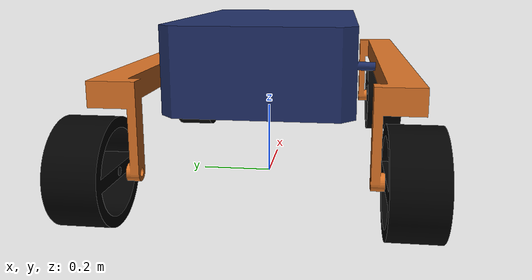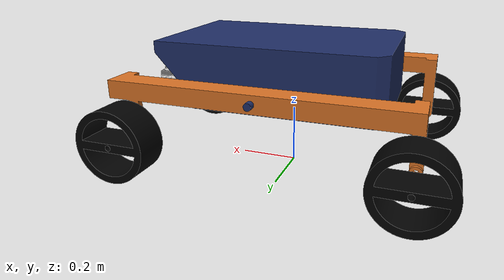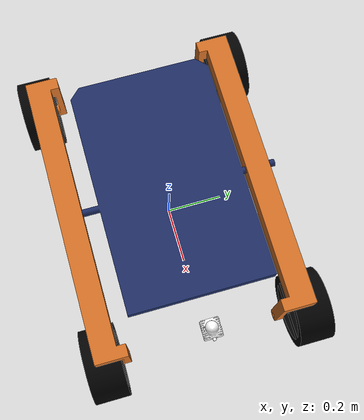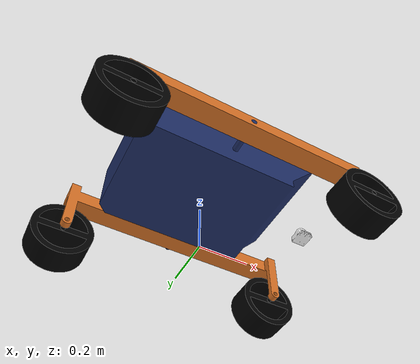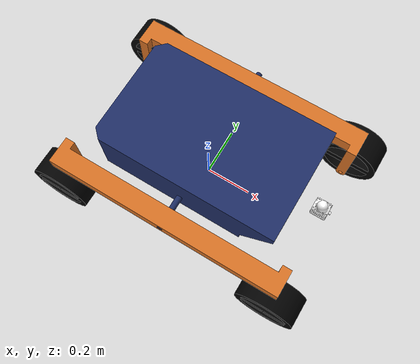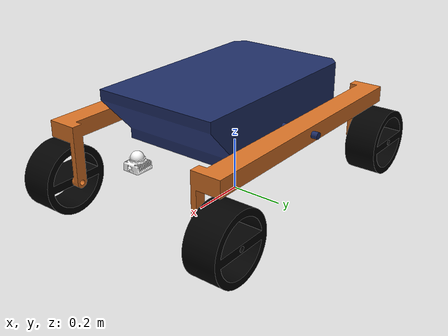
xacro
<?xml version="1.0"?>
<robot name="Deimos" xmlns:xacro="http://www.ros.org/wiki/xacro">

  <xacro:property name="PI" value="3.141592653589793" />

  <xacro:include filename="$(find rover_description)/urdf/rover.material.xacro" />
  <xacro:include filename="$(find rover_description)/urdf/rover.gazebo.xacro" />
  <xacro:include filename="$(find rover_description)/urdf/sensors/lidar3d.xacro" />
  <xacro:include filename="$(find rover_description)/urdf/rover.control.xacro" />

  <link name="base_footprint" />
  <joint name="base_footprint_joint" type="fixed">
    <parent link="base_footprint" />
    <child link="base_link" />
    <origin xyz="0 0 0.2" rpy="0 0 0" />
  </joint>

  <joint name="livox_joint" type="fixed">
    <parent link="base_link" />
    <child link="livox_frame" />
    <!-- Change transform to the actual position -->
    <origin xyz="0.5 0 0.1" rpy="0 0 0" />
  </joint>

  <link name="livox_frame">
    <visual>
      <origin xyz="0 0 0" rpy="${PI/2} 0 0" />
      <geometry>
        <mesh filename="package://rover_description/meshes/livox-mid-360.stl" scale="0.001 0.001 0.001" />
      </geometry>
      <material name="white" />
    </visual>
  </link>

  <link name="base_link">
    <inertial>
      <origin xyz="0.000140 -0.011273 0.154038" rpy="0 0 0" />
      <mass value="40.0" />
      <inertia
        ixx="0.897081" iyy="1.842092" izz="2.420768"
        ixy="0.000000" iyz="-0.000000" ixz="-0.060668" />
    </inertial>
    <visual>
      <origin xyz="0 0 0" rpy="0 0 0" />
      <geometry>
        <mesh filename="package://rover_description/meshes/base_link.stl" scale="0.001 0.001 0.001" />
      </geometry>
      <material name="nice_navy" />
    </visual>
    <collision>
      <origin xyz="0 0 0" rpy="0 0 0" />
      <geometry>
        <mesh filename="package://rover_description/meshes/base_link.stl" scale="0.001 0.001 0.001" />
      </geometry>
    </collision>
  </link>

  <!-- Suspension link macro -->
  <xacro:macro name="suspension_link" params="name side">
    <link name="${name}">
      <inertial>
        <origin xyz="0 ${side * 0.044665} -0.006059" rpy="0 0 0" />
        <mass value="40.25594624417332" />
        <inertia
          ixx="0.072836" iyy="3.825904" izz="3.812794"
          ixy="0.0" iyz="${side * 0.013096}" ixz="0.0" />
      </inertial>

      <visual>
        <origin xyz="-0.023205 ${side * 0.386373} -0.118244" rpy="0 0 0" />
        <geometry>
          <mesh
            filename="package://rover_description/meshes/${name}.stl"
            scale="0.001 0.001 0.001" />
        </geometry>
        <material name="soft_orange" />
      </visual>

      <collision>
        <origin xyz="-0.023205 ${side * 0.386373} -0.118244" rpy="0 0 0" />
        <geometry>
          <mesh
            filename="package://rover_description/meshes/${name}.stl"
            scale="0.001 0.001 0.001" />
        </geometry>
      </collision>
    </link>
  </xacro:macro>

  <xacro:suspension_link name="suspension_left" side="-1" />
  <xacro:suspension_link name="suspension_right" side="1" />

  <!-- Wheel link macro -->
  <xacro:macro name="wheel_link" params="name front_back_sign side_sign">
    <link name="${name}">
      <inertial>
        <origin xyz="0 ${side_sign * -0.06} 0" rpy="0 0 0" />
        <mass value="21.981308930926716" />
        <inertia
          ixx="0.133433" iyy="0.232318" izz="0.151641"
          ixy="0.0" iyz="0.0" ixz="0.0" />
      </inertial>

      <visual>
        <origin
          xyz="${front_back_sign * 0.475 - 0.023205} ${side_sign * 0.2951 + 0.011273} 0.061756"
          rpy="0 0 0" />
        <geometry>
          <mesh
            filename="package://rover_description/meshes/${name}.stl"
            scale="0.001 0.001 0.001" />
        </geometry>
        <material name="black" />
      </visual>

      <collision>
        <origin
          xyz="${front_back_sign * 0.475 - 0.023205} ${side_sign * 0.2951 + 0.011273} 0.061756"
          rpy="0 0 0" />
        <geometry>
          <mesh
            filename="package://rover_description/meshes/${name}.stl"
            scale="0.001 0.001 0.001" />
        </geometry>
      </collision>
    </link>
  </xacro:macro>

  <xacro:wheel_link name="wheel_back_left" front_back_sign="1" side_sign="-1" />
  <xacro:wheel_link name="wheel_front_left" front_back_sign="-1" side_sign="-1" />
  <xacro:wheel_link name="wheel_back_right" front_back_sign="1" side_sign="1" />
  <xacro:wheel_link name="wheel_front_right" front_back_sign="-1" side_sign="1" />

  <!-- Suspension joint macro -->
  <xacro:macro name="suspension_joint" params="side y">
    <joint name="suspension_${side}_joint" type="fixed">
      <origin xyz="0.023205 ${y} 0.118244" rpy="0 0 0" />
      <parent link="base_link" />
      <child link="suspension_${side}" />
    </joint>
  </xacro:macro>

  <xacro:suspension_joint side="left" y="0.363827" />
  <xacro:suspension_joint side="right" y="-0.386373" />

  <!-- Wheel joint macro -->
  <xacro:macro name="wheel_joint" params="parent child x_sign y_sign">
    <joint name="${child}_joint" type="continuous">
      <origin xyz="${x_sign * 0.475} ${y_sign * 0.08} -0.18" rpy="0 0 0" />
      <parent link="${parent}" />
      <child link="${child}" />
      <axis xyz="0 1 0" />
    </joint>
  </xacro:macro>

  <xacro:wheel_joint
    parent="suspension_left" child="wheel_back_left"
    x_sign="-1" y_sign="-1"
  />

  <xacro:wheel_joint
    parent="suspension_left" child="wheel_front_left"
    x_sign="1" y_sign="-1"
  />

  <xacro:wheel_joint
    parent="suspension_right" child="wheel_back_right"
    x_sign="-1" y_sign="1"
  />

  <xacro:wheel_joint
    parent="suspension_right" child="wheel_front_right"
    x_sign="1" y_sign="1"
  />

</robot>

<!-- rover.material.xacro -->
<robot name="Deimos_Material" xmlns:xacro="http://www.ros.org/wiki/xacro">

  <material name="black">
    <color rgba="0.01 0.01 0.01 1" />
  </material>

  <material name="white">
    <color rgba="1 1 1 1" />
  </material>

  <material name="silver">
    <color rgba="0.7 0.7 0.7 1" />
  </material>

  <material name="nice_navy">
    <color rgba="0.12 0.18 0.4 1" />
  </material>

  <material name="soft_orange">
    <color rgba="0.85 0.45 0.15 1" />
  </material>

</robot>

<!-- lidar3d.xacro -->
<robot xmlns:xacro="http://ros.org/wiki/xacro">
  <xacro:property name="PI" value="3.141592653589793" />

  <gazebo reference="lidar_link">
    <sensor name="lidar3d" type="gpu_lidar">
      <ignition_frame_id>lidar_link</ignition_frame_id>
      <always_on>true</always_on>
      <update_rate>10</update_rate>
      <visualize>true</visualize>
      <topic>/lidar</topic>

      <lidar>
        <scan>
          <horizontal>
            <samples>512</samples>
            <resolution>1</resolution>
            <min_angle>${-PI/2}</min_angle>
            <max_angle> ${PI/2}</max_angle>
          </horizontal>

          <!-- Vertical channels = 3D -->
          <vertical>
            <samples>64</samples>
            <resolution>1</resolution>
            <min_angle>0</min_angle>
            <max_angle>${PI/2}</max_angle>
          </vertical>
        </scan>

        <range>
          <min>0.5</min>
          <max>30.0</max>
          <resolution>0.01</resolution>
        </range>
      </lidar>
    </sensor>
  </gazebo>

</robot>
